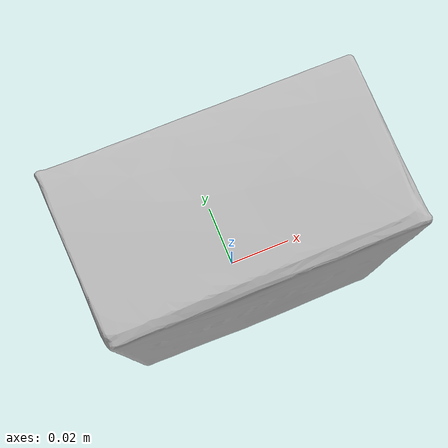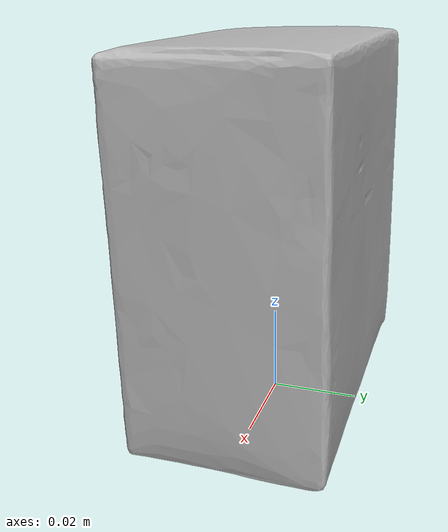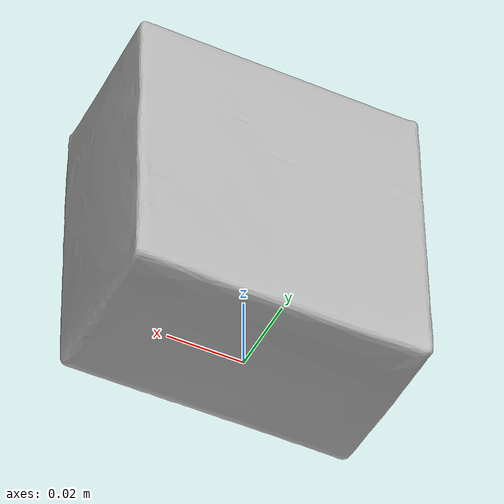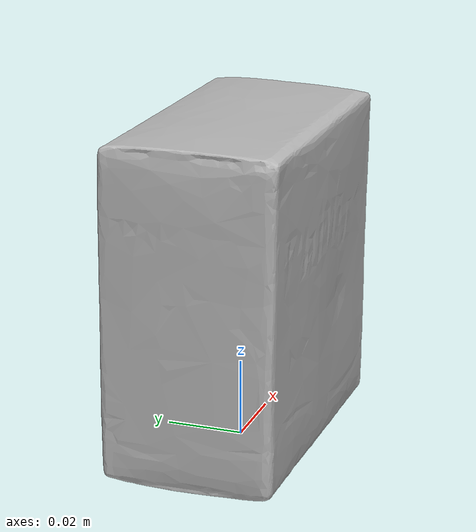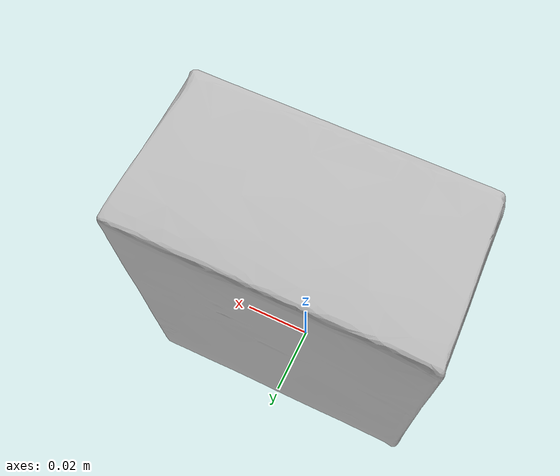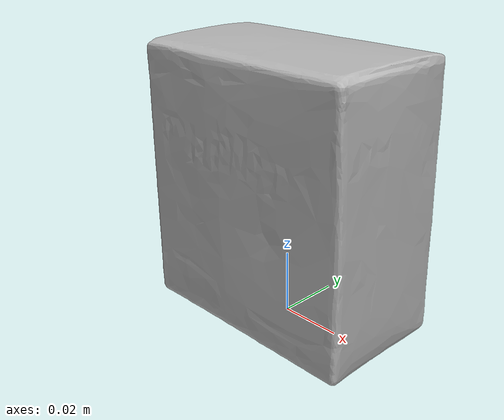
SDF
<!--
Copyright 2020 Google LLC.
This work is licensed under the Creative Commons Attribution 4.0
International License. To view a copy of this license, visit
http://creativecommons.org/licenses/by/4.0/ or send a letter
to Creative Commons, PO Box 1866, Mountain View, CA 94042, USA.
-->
<?xml version="1.0" ?>
<sdf version="1.6">
  <model name="Phillips_Caplets_Size_24">
    <link name="link_0">
      <visual name="visual">
        <geometry>
          <mesh>
            <uri>meshes/model.obj</uri>
          </mesh>
        </geometry>
      </visual>
      <collision name="collision_0">
        <geometry>
          <mesh>
            <uri>meshes/model.obj</uri>
          </mesh>
        </geometry>
      </collision>
    </link>
  </model>
</sdf>
